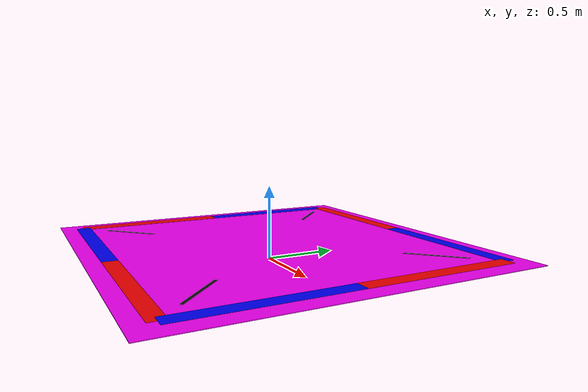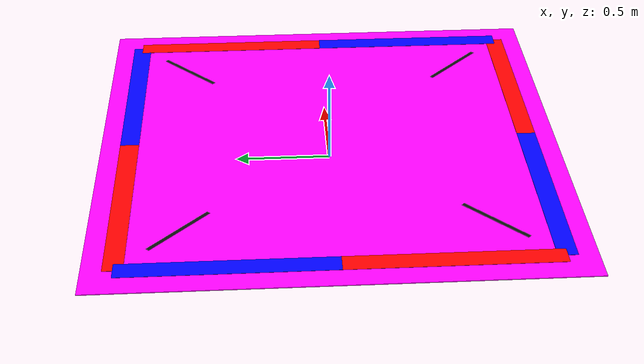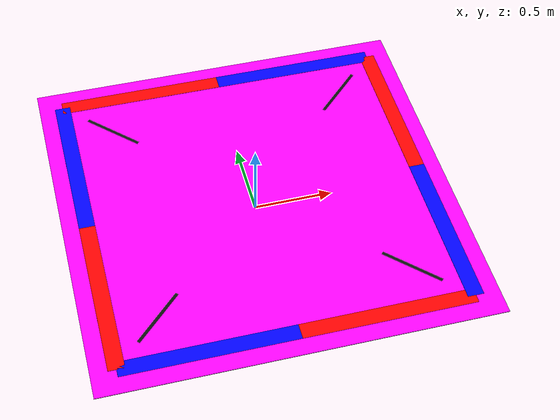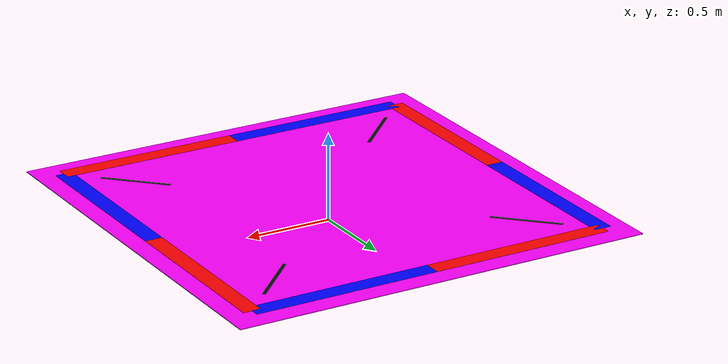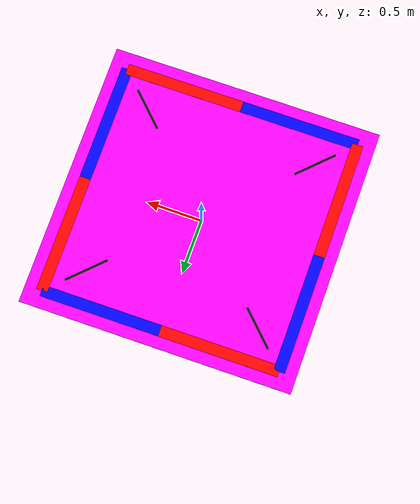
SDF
<?xml version="1.0" ?>
<sdf version="1.4">
  <model name="dlz_alternating_border">
    <static>true</static>
    <link name="dlz_alternating_border_link">
      <!-- Same link offset as dlz model so this can be spawned at the same world position -->
      <pose>-5.0192 0.0192 0 0 0 0</pose>
      <inertial>
        <mass>2</mass>
      </inertial>
      <!-- Pink DLZ mesh -->
      <visual name="visual">
        <pose> 3.8 1.2 .1 1.5708 0 0 </pose>
        <geometry>
          <mesh>
            <uri>model://dlz/meshes/dlz.STL</uri>
            <scale>  0.001000164 0.001000164 0.001000164 </scale>
          </mesh>
        </geometry>
        <material>
          <diffuse>1 0 1 1</diffuse>
        </material>
      </visual>
      <!-- Square alternating border: 8 segments (2 per side) -->
      <!-- Color A = red (1.0 0.0 0.0), Color B = blue (0.0 0.0 1.0) -->
      <!-- Border centerline at 1.0668m from DLZ center (6 inches inset from 8ft pad edge) -->
      <!-- DLZ center in link space: (5.0192, -0.0192) -->
      <!-- Each segment: 1.0668m long x 0.10m wide -->
      <!-- CCW order per side: [B, A]. Corner rule:                                -->
      <!--   Going CCW: A->B transition = corner (B is on the perpendicular side)  -->
      <!--   Going CW:  B->A transition = corner (A is on the perpendicular side)  -->
      <!--   Top side (y=1.0476):  B=right-half, A=left-half  (CCW travels left)  -->
      <!--   Left side (x=3.9524): B=top-half,   A=bot-half   (CCW travels down)  -->
      <!--   Bot side (y=-1.0860): B=left-half,  A=right-half (CCW travels right) -->
      <!--   Right side (x=6.086): B=bot-half,   A=top-half   (CCW travels up)    -->

      <!-- TOP SIDE -->
      <visual name="border_top_B">
        <cast_shadows>false</cast_shadows>
        <pose>5.5526 1.0476 0.112 0 0 0</pose>
        <geometry><box><size>1.0668 0.10 0.001</size></box></geometry>
        <material><ambient>0.0 0.0 1.0 1</ambient><diffuse>0.0 0.0 1.0 1</diffuse></material>
      </visual>
      <visual name="border_top_A">
        <cast_shadows>false</cast_shadows>
        <pose>4.4858 1.0476 0.112 0 0 0</pose>
        <geometry><box><size>1.0668 0.10 0.001</size></box></geometry>
        <material><ambient>1.0 0.0 0.0 1</ambient><diffuse>1.0 0.0 0.0 1</diffuse></material>
      </visual>

      <!-- LEFT SIDE -->
      <visual name="border_left_B">
        <cast_shadows>false</cast_shadows>
        <pose>3.9524 0.5142 0.112 0 0 0</pose>
        <geometry><box><size>0.10 1.0668 0.001</size></box></geometry>
        <material><ambient>0.0 0.0 1.0 1</ambient><diffuse>0.0 0.0 1.0 1</diffuse></material>
      </visual>
      <visual name="border_left_A">
        <cast_shadows>false</cast_shadows>
        <pose>3.9524 -0.5526 0.112 0 0 0</pose>
        <geometry><box><size>0.10 1.0668 0.001</size></box></geometry>
        <material><ambient>1.0 0.0 0.0 1</ambient><diffuse>1.0 0.0 0.0 1</diffuse></material>
      </visual>

      <!-- BOTTOM SIDE -->
      <visual name="border_bottom_B">
        <cast_shadows>false</cast_shadows>
        <pose>4.4858 -1.0860 0.112 0 0 0</pose>
        <geometry><box><size>1.0668 0.10 0.001</size></box></geometry>
        <material><ambient>0.0 0.0 1.0 1</ambient><diffuse>0.0 0.0 1.0 1</diffuse></material>
      </visual>
      <visual name="border_bottom_A">
        <cast_shadows>false</cast_shadows>
        <pose>5.5526 -1.0860 0.112 0 0 0</pose>
        <geometry><box><size>1.0668 0.10 0.001</size></box></geometry>
        <material><ambient>1.0 0.0 0.0 1</ambient><diffuse>1.0 0.0 0.0 1</diffuse></material>
      </visual>

      <!-- RIGHT SIDE -->
      <visual name="border_right_B">
        <cast_shadows>false</cast_shadows>
        <pose>6.0860 -0.5526 0.112 0 0 0</pose>
        <geometry><box><size>0.10 1.0668 0.001</size></box></geometry>
        <material><ambient>0.0 0.0 1.0 1</ambient><diffuse>0.0 0.0 1.0 1</diffuse></material>
      </visual>
      <visual name="border_right_A">
        <cast_shadows>false</cast_shadows>
        <pose>6.0860 0.5142 0.112 0 0 0</pose>
        <geometry><box><size>0.10 1.0668 0.001</size></box></geometry>
        <material><ambient>1.0 0.0 0.0 1</ambient><diffuse>1.0 0.0 0.0 1</diffuse></material>
      </visual>

      <!-- Diagonal black lines from each corner pointing toward DLZ center -->
      <visual name="diag_top_left">
        <cast_shadows>false</cast_shadows>
        <pose>4.2462 0.7538 0.112 0 0 -0.7854</pose>
        <geometry><box><size>0.4 0.02 0.001</size></box></geometry>
        <material><ambient>0.05 0.05 0.05 1</ambient><diffuse>0.05 0.05 0.05 1</diffuse></material>
      </visual>
      <visual name="diag_top_right">
        <cast_shadows>false</cast_shadows>
        <pose>5.7922 0.7538 0.112 0 0 0.7854</pose>
        <geometry><box><size>0.4 0.02 0.001</size></box></geometry>
        <material><ambient>0.05 0.05 0.05 1</ambient><diffuse>0.05 0.05 0.05 1</diffuse></material>
      </visual>
      <visual name="diag_bottom_left">
        <cast_shadows>false</cast_shadows>
        <pose>4.2462 -0.7922 0.112 0 0 0.7854</pose>
        <geometry><box><size>0.4 0.02 0.001</size></box></geometry>
        <material><ambient>0.05 0.05 0.05 1</ambient><diffuse>0.05 0.05 0.05 1</diffuse></material>
      </visual>
      <visual name="diag_bottom_right">
        <cast_shadows>false</cast_shadows>
        <pose>5.7922 -0.7922 0.112 0 0 -0.7854</pose>
        <geometry><box><size>0.4 0.02 0.001</size></box></geometry>
        <material><ambient>0.05 0.05 0.05 1</ambient><diffuse>0.05 0.05 0.05 1</diffuse></material>
      </visual>
    </link>
  </model>
</sdf>
